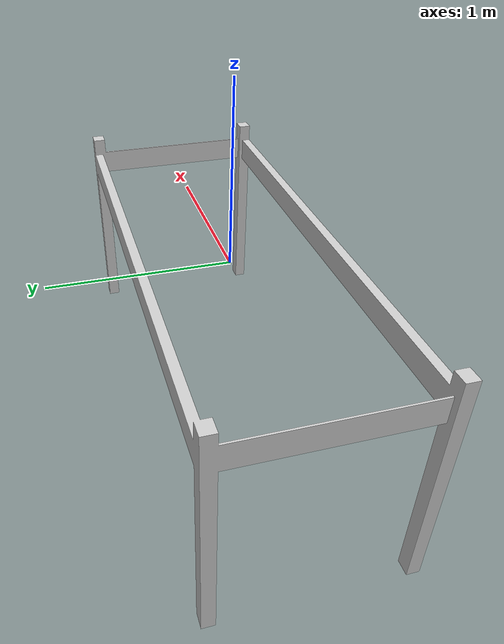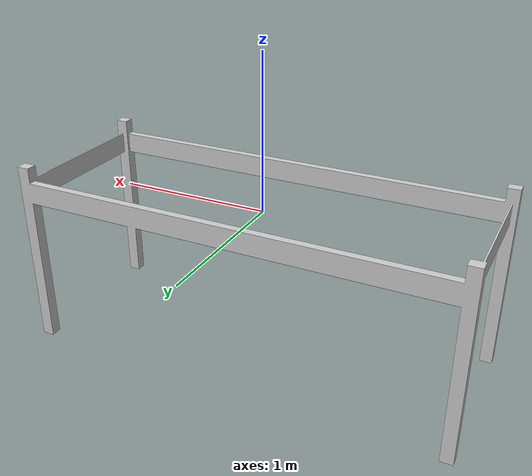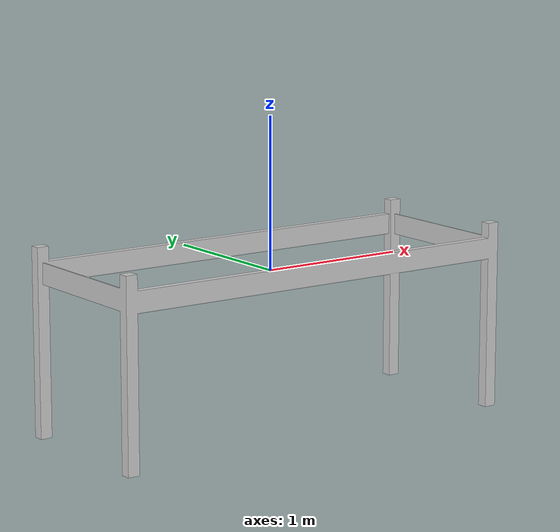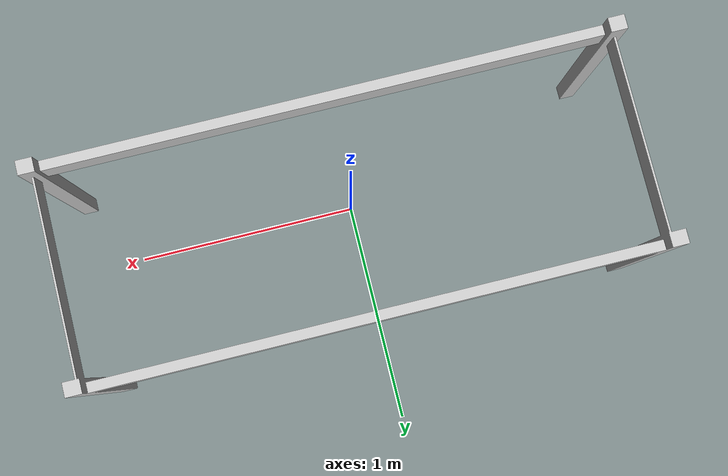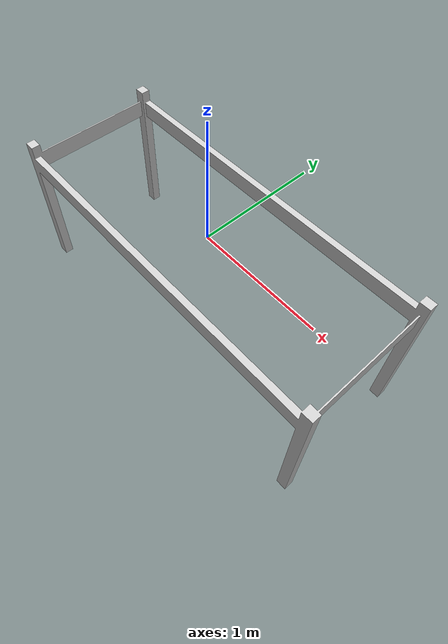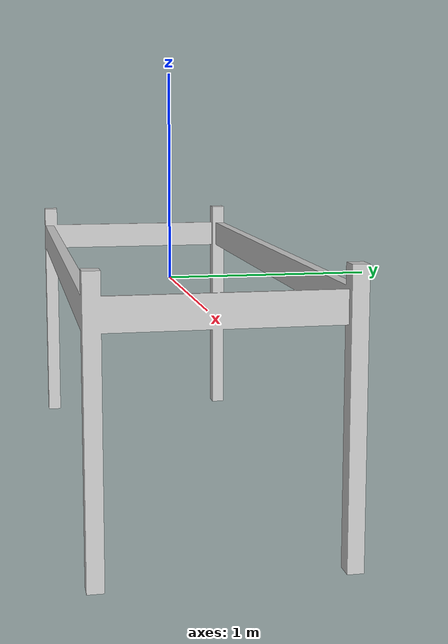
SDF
<sdf version="1.7">
<model name="modular_shelf" canonical_link="node0_link">
  <link name="node0_link">
    <collision name="node0_collision">
      <pose relative_to="node0_link">0.00000 0.00000 0.00000 0.00000 0.00000 0.00000</pose>
      <geometry>
        <mesh>
          <uri>meshes/Body.dae</uri>
          <scale>1.00000 1.00000 1.00000</scale>
        </mesh>
      </geometry>
      <surface>
        <contact><ode>  <max_vel>0.001</max_vel><min_depth>0.01</min_depth><kd>1e15</kd>  </ode></contact>
      </surface>
    </collision>
    <inertial>
      <inertia>
        <ixx>51.21102</ixx>
        <ixy>0.00000</ixy>
        <ixz>0.00000</ixz>
        <iyy>253.60229</iyy>
        <iyz>0.00000</iyz>
        <izz>268.89283</izz>
      </inertia>
      <pose relative_to="node0_link">0.00000 0.00000 -0.11258 0.00000 0.00000 0.00000</pose>
      <mass>250.00000</mass>
    </inertial>
    <visual name="node0">
      <material>
        <diffuse>0.80000 0.80000 0.80000 1.00000</diffuse>
        <specular>0.40000 0.40000 0.40000 0.49804</specular>
        <emissive>0.00000 0.00000 0.00000 1.00000</emissive>
      </material>
      <pose relative_to="node0_link">0.00000 0.00000 0.00000 0.00000 0.00000 0.00000</pose>
      <geometry>
        <mesh>
          <uri>meshes/Body.dae</uri>
          <scale>1.00000 1.00000 1.00000</scale>
        </mesh>
      </geometry>
    </visual>
  </link>
</model>
</sdf>
